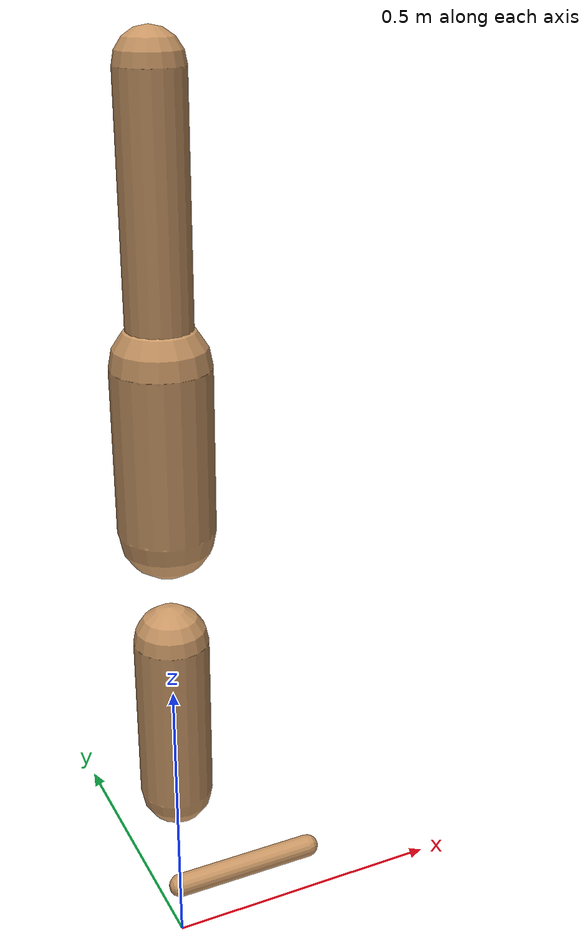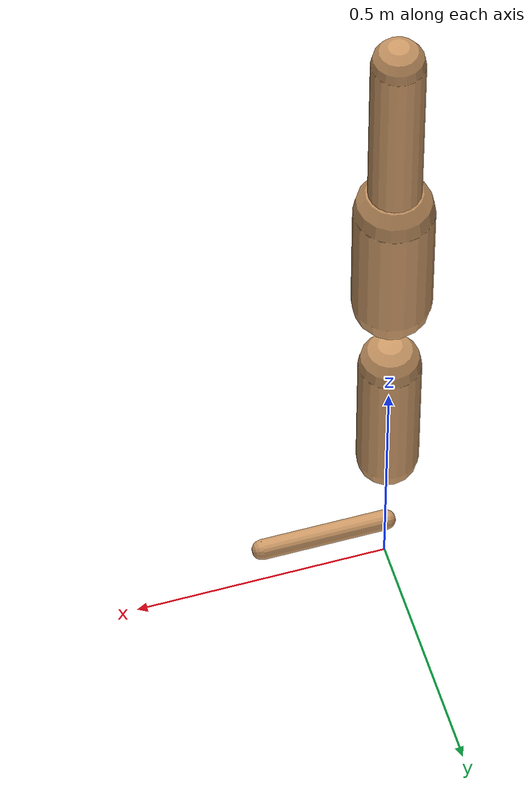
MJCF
<mujoco model="walker2d">
  <compiler angle="degree" coordinate="global" inertiafromgeom="true" />
  <default>
    <joint armature="0.01" damping=".1" limited="true" />
    <geom conaffinity="0" condim="3" contype="1" density="1000" friction="0.8 .1 .1" rgba="0.8 0.6 .4 1" />
  </default>
  <option integrator="RK4" timestep="0.002" />
  <worldbody>

    <body name="torso" pos="0 0 -0.40934981199328657">
      <joint armature="0" axis="1 0 0" damping="0" limited="false" name="ignorex" pos="0 0 0" stiffness="0" type="slide" />
      <joint armature="0" axis="0 0 1" damping="0" limited="false" name="ignorez" pos="0 0 0" ref="1.25" stiffness="0" type="slide" />
      <joint armature="0" axis="0 1 0" damping="0" limited="false" name="ignorey" pos="0 0 0" stiffness="0" type="hinge" />
      <geom fromto="0 0 1.45 0 0 1.05" name="torso_geom" size="0.049046316585552474" type="capsule" />
      <body name="thigh">
        <joint axis="0 -1 0" name="thigh_joint" pos="0 0 1.05" range="-150 0" type="hinge" />
        <geom fromto="0.0 0.0 1.05 0.0 0.0 0.7939025425231357" name="thigh_geom" size="0.07481416011673524" type="capsule" />
        <body name="leg" pos="0.0 0.0 0.19390254252313577">
          <joint axis="0 -1 0" name="leg_joint" pos="0 0 0.6" range="-150 0" type="hinge" />
          <geom fromto="0.0 0.0 0.6 0.0 0.0 0.3154472694701508" name="leg_geom" size="0.05985132809338818" type="capsule" />
          <body name="foot" pos="0.0 0.0 0.21544726947015078">
            <joint axis="0 -1 0" name="foot_joint" pos="0 0 0.1" range="-45 45" type="hinge" />
            <geom fromto="-0.0 0.0 0.1 0.24858157121455507 0.0 0.1" name="foot_geom" size="0.020013871583500032" type="capsule" />
          </body>
        </body>
      </body>

      <body name="thigh_left">
        <joint axis="0 -1 0" name="thigh_left_joint" pos="0 0 1.05" range="-150 0" type="hinge" />
        <geom fromto="0.0 0.0 1.05 0.0 0.0 0.7939025425231357" name="thigh_left_geom" rgba=".7 .3 .6 1" size="0.07481416011673524" type="capsule" />
        <body name="leg_left" pos="0.0 0.0 0.19390254252313577">
          <joint axis="0 -1 0" name="leg_left_joint" pos="0 0 0.6" range="-150 0" type="hinge" />
          <geom fromto="0.0 0.0 0.6 0.0 0.0 0.3154472694701508" name="leg_left_geom" rgba=".7 .3 .6 1" size="0.05985132809338818" type="capsule" />
          <body name="foot_left" pos="0.0 0.0 0.21544726947015078">
            <joint axis="0 -1 0" name="foot_left_joint" pos="0 0 0.1" range="-45 45" type="hinge" />
            <geom fromto="-0.0 0.0 0.1 0.24858157121455507 0.0 0.1" name="foot_left_geom" rgba=".7 .3 .6 1" size="0.020013871583500032" type="capsule" />
          </body>
        </body>
      </body>
    </body>
  </worldbody>
  <actuator>

    <motor ctrllimited="true" ctrlrange="-1.0 1.0" gear="100" joint="thigh_joint" />
    <motor ctrllimited="true" ctrlrange="-1.0 1.0" gear="100" joint="leg_joint" />
    <motor ctrllimited="true" ctrlrange="-1.0 1.0" gear="100" joint="foot_joint" />
    <motor ctrllimited="true" ctrlrange="-1.0 1.0" gear="100" joint="thigh_left_joint" />
    <motor ctrllimited="true" ctrlrange="-1.0 1.0" gear="100" joint="leg_left_joint" />
    <motor ctrllimited="true" ctrlrange="-1.0 1.0" gear="100" joint="foot_left_joint" />

  </actuator>
</mujoco>
